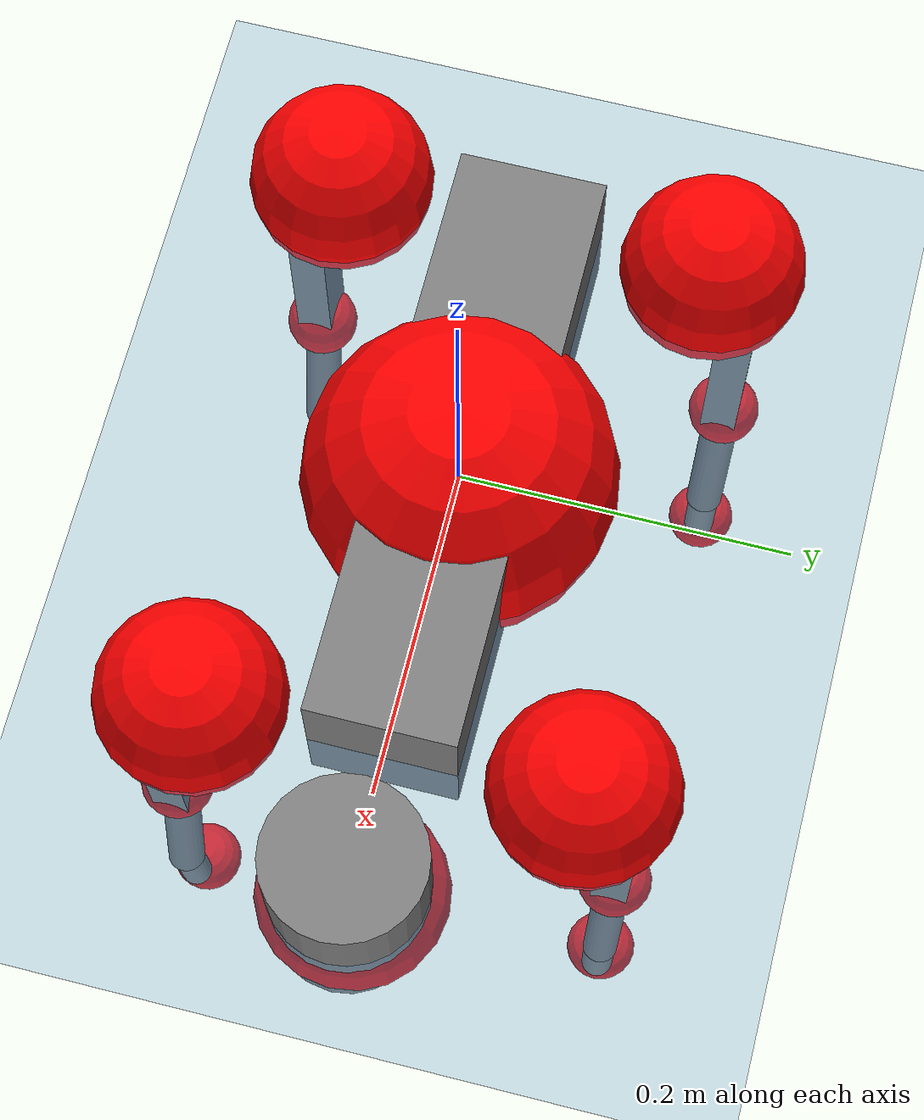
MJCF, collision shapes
<mujoco model="go2">
  <compiler angle="radian" assetdir="assets" balanceinertia="true" inertiafromgeom="false"/>

  <option timestep="0.005" density="1.2" viscosity="2e-05"/>

  <size nkey="1"/>

  <visual>
    <quality shadowsize="8192"/>
    <map shadowclip="0.5"/>
  </visual>

  <default>
    <default class="/">
      <geom contype="0" conaffinity="0" group="1" solref="-1000 -80"/>
      <site size="0.01 0.005 0.005" group="5"/>
      <general forcelimited="true" biastype="affine" gainprm="20" biasprm="0 -20 -0.5"/>
      <default class="go2">
        <joint armature="0.01" damping="0.01" frictionloss="0.2"/>
        <geom condim="1" margin="0.001"/>
        <default class="visual">
          <geom type="mesh" group="2"/>
        </default>
        <default class="collision">
          <geom group="3"/>
          <default class="foot">
            <geom size="0.022 0 0" condim="6" priority="1" friction="0.8 0.02 0.01" solimp="0.015 1 0.022"/>
          </default>
        </default>
        <default class="reward_collision_sphere">
          <geom group="5" rgba="1 0 0 1"/>
        </default>
      </default>
    </default>
  </default>

  <asset>
    <texture type="skybox" colorspace="auto" name="//unnamed_texture_0" builtin="gradient" rgb1="0.95 0.95 0.95" rgb2="0.95 0.95 0.95" width="100" height="600"/>
    <texture type="2d" colorspace="auto" name="texplane" builtin="checker" rgb1="0.345 0.575 0.748" rgb2="0.345 0.575 0.748" markrgb="1 1 1" width="512" height="512"/>
    <material name="MatPlane" class="/" texture="texplane" texuniform="true" texrepeat="2 2" specular="0.9"/>
    <material name="metal" class="/" rgba="0.9 0.95 0.95 1"/>
    <material name="black" class="/" rgba="0 0 0 1"/>
    <material name="white" class="/"/>
    <material name="gray" class="/" rgba="0.671705 0.692426 0.77427 1"/>
    <mesh name="base_0" class="/" file="base_0.obj"/>
    <mesh name="base_1" class="/" file="base_1.obj"/>
    <mesh name="base_2" class="/" file="base_2.obj"/>
    <mesh name="base_3" class="/" file="base_3.obj"/>
    <mesh name="base_4" class="/" file="base_4.obj"/>
    <mesh name="hip_0" class="/" file="hip_0.obj"/>
    <mesh name="hip_1" class="/" file="hip_1.obj"/>
    <mesh name="thigh_0" class="/" file="thigh_0.obj"/>
    <mesh name="thigh_1" class="/" file="thigh_1.obj"/>
    <mesh name="thigh_mirror_0" class="/" file="thigh_mirror_0.obj"/>
    <mesh name="thigh_mirror_1" class="/" file="thigh_mirror_1.obj"/>
    <mesh name="calf_0" class="/" file="calf_0.obj"/>
    <mesh name="calf_1" class="/" file="calf_1.obj"/>
    <mesh name="calf_mirror_0" class="/" file="calf_mirror_0.obj"/>
    <mesh name="calf_mirror_1" class="/" file="calf_mirror_1.obj"/>
    <mesh name="foot" class="/" file="foot.obj"/>
  </asset>

  <worldbody>
    <geom name="floor" class="/" size="100 100 0.125" type="plane" group="0" material="MatPlane"/>
    <light name="toplight_shadow" class="/" pos="0 0 5" dir="0.0990148 0.0990148 -0.990148" type="directional" ambient="0.04 0.04 0.04" diffuse="0.55 0.55 0.55" specular="0.12 0.12 0.12"/>
    <light name="toplight_fill" class="/" pos="0 0 5" dir="0.0990148 0.0990148 -0.990148" type="directional" castshadow="false" ambient="0.04 0.04 0.04" diffuse="0.3 0.3 0.3" specular="0.08 0.08 0.08"/>
    <body name="trunk" childclass="go2" pos="-0.00125839 0.000354656 0.0021069" quat="0.999999 0.000636093 -0.000516416 -0.00102302">
      <inertial pos="0.018744 -0.00194418 -0.00770557" quat="0.0019339 0.71561 -0.000833518 0.698497" mass="5.92495" diaginertia="0.0589174 0.103089 0.0188492"/>
      <joint name="//unnamed_joint_0" type="free" armature="0" damping="0" frictionloss="0"/>
      <geom name="//unnamed_geom_1" class="visual" material="black" mesh="base_0"/>
      <geom name="//unnamed_geom_2" class="visual" material="black" mesh="base_1"/>
      <geom name="//unnamed_geom_3" class="visual" material="black" mesh="base_2"/>
      <geom name="//unnamed_geom_4" class="visual" material="white" mesh="base_3"/>
      <geom name="//unnamed_geom_5" class="visual" material="gray" mesh="base_4"/>
      <geom name="trunk_1" class="collision" size="0.178771 0.0444313 0.0541729" type="box"/>
      <geom name="trunk_2" class="collision" size="0.0475201 0.0427681" pos="0.253259 0 0.0095075" type="cylinder"/>
      <geom name="trunk_3" class="collision" size="0.0446689" pos="0.260368 0 -0.057045"/>
      <geom name="//unnamed_geom_9" class="reward_collision_sphere" size="0.0950402"/>
      <geom name="//unnamed_geom_10" class="reward_collision_sphere" size="0.0570241" pos="0.248815 0 -0.0427837"/>
      <site name="imu" pos="-0.0171329 0.000176972 0.0344841" size="0.00950402"/>
      <camera name="track" pos="0 -2.02366 0" quat="0.707107 0.707107 0 0" mode="trackcom"/>
      <camera name="ego_camera" pos="0.277251 0 0.0427837" quat="-0.5 -0.5 0.5 0.5"/>
      <body name="FL_hip" pos="0.168979 0.0448241 -0.00246184" quat="1 1.50115e-05 9.58379e-05 4.90192e-05">
        <inertial pos="-0.00478124 -0.000332534 0.000837625" quat="0.497657 0.498645 0.505868 0.497784" mass="0.603265" diaginertia="0.000489996 0.000616099 0.000373958"/>
        <joint name="FL_hip_joint" pos="0 0 0" axis="0.999854 -0.0159423 -0.00611674" range="-1.05002 1.09786" armature="0.0090759" damping="0.021509" frictionloss="0.164283"/>
        <geom name="//unnamed_geom_11" class="visual" material="metal" mesh="hip_0"/>
        <geom name="//unnamed_geom_12" class="visual" material="gray" mesh="hip_1"/>
        <geom name="//unnamed_geom_13" class="collision" size="0.0437185 0.019008" pos="0 0.0809465 0" quat="0.707107 0.707107 0 0" type="cylinder"/>
        <geom name="//unnamed_geom_14" class="reward_collision_sphere" size="0.0570241" pos="0 0.0708282 0"/>
        <body name="FL_thigh" pos="-0.00343748 0.0969687 0.002772" quat="1 -3.93564e-05 -0.000583514 0.000309508">
          <inertial pos="-0.00452122 -0.0222523 -0.0282554" quat="0.833985 0.0773929 -0.0253084 0.545747" mass="0.967488" diaginertia="0.00334371 0.00624155 0.00070546"/>
          <joint name="FL_thigh_joint" pos="0 0 0" axis="0.00693828 0.999959 0.00573843" stiffness="0.00665937" range="-1.53674 3.54544" armature="0.00888642" damping="0.0167495" frictionloss="0.163229"/>
          <geom name="//unnamed_geom_15" class="visual" material="metal" mesh="thigh_0"/>
          <geom name="//unnamed_geom_16" class="visual" material="gray" mesh="thigh_1"/>
          <geom name="//unnamed_geom_17" class="collision" size="0.101218 0.0116424 0.0161568" pos="0 0 -0.101255" quat="0.707107 0 0.707107 0" type="box"/>
          <body name="FL_calf" pos="-0.000189993 0.00115872 -0.203409" quat="1 0.000172309 0.000240928 -0.000144119">
            <inertial pos="0.00547534 0.000197766 -0.136865" quat="0.710616 0.00315106 -0.00458133 0.703558" mass="0.207806" diaginertia="0.000802989 0.00153233 4.15137e-05"/>
            <joint name="FL_calf_joint" pos="0 0 0" axis="-0.00761283 0.999911 -0.0109465" range="-2.66784 -0.839974" armature="0.0103856" damping="0" frictionloss="0.189249"/>
            <geom name="//unnamed_geom_18" class="visual" material="gray" mesh="calf_0"/>
            <geom name="//unnamed_geom_19" class="visual" material="black" mesh="calf_1"/>
            <geom name="FL_calf0" class="collision" size="0.0114048 0.0570241" pos="0.00710901 0 -0.057045" quat="0.994493 0 -0.104807 0" type="cylinder"/>
            <geom name="//unnamed_geom_21" class="collision" size="0.0104544 0.0308881" pos="0.0177725 0 -0.140711" quat="0.999688 0 0.0249974 0" type="cylinder"/>
            <geom name="//unnamed_geom_22" class="visual" pos="0 0 -0.20251" quat="1 0 0 0" material="black" mesh="foot"/>
            <geom name="FL_foot" class="foot" size="0.0160267" pos="-0.00177725 0 -0.20251"/>
            <geom name="//unnamed_geom_24" class="reward_collision_sphere" size="0.0237601"/>
            <geom name="//unnamed_geom_25" class="reward_collision_sphere" size="0.0237601" pos="-0.00177725 0 -0.20251"/>
            <site name="FL_foot" class="foot" pos="-0.00177725 0 -0.20251" size="0.00950402"/>
          </body>
        </body>
      </body>
      <body name="FR_hip" pos="0.171047 -0.044565 -0.00159648" quat="1 -5.89125e-05 0.000199111 -0.000118893">
        <inertial pos="-0.00744206 -0.00150527 -0.00314321" quat="0.49858 0.506184 0.499939 0.495235" mass="0.589549" diaginertia="0.000476364 0.000641996 0.000361628"/>
        <joint name="FR_hip_joint" pos="0 0 0" axis="0.999948 -0.00673791 0.00761361" stiffness="0.00891393" range="-1.04687 1.03853" armature="0.00967116" damping="0" frictionloss="0.211583"/>
        <geom name="//unnamed_geom_26" class="visual" pos="0 5.32113e-10 2.28234e-08" quat="4.63268e-05 1 0 0" material="metal" mesh="hip_0"/>
        <geom name="//unnamed_geom_27" class="visual" pos="0 8.62619e-10 -5.64511e-08" quat="4.63268e-05 1 0 0" material="gray" mesh="hip_1"/>
        <geom name="//unnamed_geom_28" class="collision" size="0.0437185 0.019008" pos="0 -0.0809465 0" quat="0.707107 0.707107 0 0" type="cylinder"/>
        <geom name="//unnamed_geom_29" class="reward_collision_sphere" size="0.0570241" pos="0 -0.0708282 0"/>
        <body name="FR_thigh" pos="0.00298569 -0.0992987 -0.0010198" quat="1 0.000703426 -0.000476962 3.89246e-05">
          <inertial pos="-0.00250492 0.0209172 -0.0338541" quat="0.543373 -0.0295394 0.0813408 0.835019" mass="1.01264" diaginertia="0.00316716 0.00601111 0.000688701"/>
          <joint name="FR_thigh_joint" pos="0 0 0" axis="0.00533172 -0.999985 -0.00135485" range="-3.44972 1.55588" armature="0.00831366" damping="0.0199371" frictionloss="0.214212"/>
          <geom name="//unnamed_geom_30" class="visual" material="metal" mesh="thigh_mirror_0"/>
          <geom name="//unnamed_geom_31" class="visual" material="gray" mesh="thigh_mirror_1"/>
          <geom name="//unnamed_geom_32" class="collision" size="0.101218 0.0116424 0.0161568" pos="0 0 -0.101255" quat="0.707107 0 0.707107 0" type="box"/>
          <body name="FR_calf" pos="-0.00298875 -0.00138385 -0.203266" quat="0.999999 -0.000345846 0.000320063 0.00134335">
            <inertial pos="0.00314128 0.000700957 -0.134849" quat="0.704983 -0.00465135 0.00319271 0.709201" mass="0.220697" diaginertia="0.00087579 0.00154399 4.27354e-05"/>
            <joint name="FR_calf_joint" pos="0 0 0" axis="0.000792105 -0.999973 -0.00729903" range="0.818462 2.66347" armature="0.0106742" damping="0.0124348" frictionloss="0.215224"/>
            <geom name="//unnamed_geom_33" class="visual" material="gray" mesh="calf_mirror_0"/>
            <geom name="//unnamed_geom_34" class="visual" material="black" mesh="calf_mirror_1"/>
            <geom name="FR_calf0" class="collision" size="0.0123552 0.0570241" pos="0.00888626 0 -0.057045" quat="0.995004 0 -0.0998334 0" type="cylinder"/>
            <geom name="//unnamed_geom_36" class="collision" size="0.0104544 0.0308881" pos="0.0177725 0 -0.140711" quat="0.999688 0 0.0249974 0" type="cylinder"/>
            <geom name="//unnamed_geom_37" class="visual" pos="0 0 -0.20251" quat="1 0 0 0" material="black" mesh="foot"/>
            <geom name="FR_foot" class="foot" size="0.0203564" pos="-0.00177725 0 -0.20251"/>
            <geom name="//unnamed_geom_39" class="reward_collision_sphere" size="0.0237601"/>
            <geom name="//unnamed_geom_40" class="reward_collision_sphere" size="0.0237601" pos="-0.00177725 0 -0.20251"/>
            <site name="FR_foot" class="foot" pos="-0.00177725 0 -0.20251" size="0.00950402"/>
          </body>
        </body>
      </body>
      <body name="RL_hip" pos="-0.170157 0.0445932 -0.00144656" quat="1 0.000188796 0.000238052 -0.000516362">
        <inertial pos="0.00487782 0.00498435 0.000647885" quat="0.496971 0.502666 0.495534 0.50477" mass="0.588457" diaginertia="0.000493249 0.000632812 0.000363743"/>
        <joint name="RL_hip_joint" pos="0 0 0" axis="-1 0.000280282 -0.000944834" range="-1.04836 1.08413" armature="0.00997815" damping="0.00538715" frictionloss="0.190573"/>
        <geom name="//unnamed_geom_41" class="visual" pos="5.41194e-10 0 1.06086e-07" quat="4.63268e-05 0 1 0" material="metal" mesh="hip_0"/>
        <geom name="//unnamed_geom_42" class="visual" pos="8.7734e-10 0 9.40836e-08" quat="4.63268e-05 0 1 0" material="gray" mesh="hip_1"/>
        <geom name="//unnamed_geom_43" class="collision" size="0.0437185 0.019008" pos="0 0.0809465 0" quat="0.707107 0.707107 0 0" type="cylinder"/>
        <geom name="//unnamed_geom_44" class="reward_collision_sphere" size="0.0570241" pos="0 0.0708282 0"/>
        <body name="RL_thigh" pos="5.90445e-05 0.0938828 0.00176637" quat="0.999999 0.00112062 -4.40233e-05 0.000277301">
          <inertial pos="-0.00315034 -0.0201103 -0.0318404" quat="0.829463 0.0852338 -0.0204489 0.551641" mass="0.927022" diaginertia="0.00317854 0.00618913 0.000678853"/>
          <joint name="RL_thigh_joint" pos="0 0 0" axis="-0.000161917 0.999996 -0.00297951" stiffness="0.00434421" range="-0.576818 4.48391" armature="0.00973242" damping="0" frictionloss="0.190755"/>
          <geom name="//unnamed_geom_45" class="visual" material="metal" mesh="thigh_0"/>
          <geom name="//unnamed_geom_46" class="visual" material="gray" mesh="thigh_1"/>
          <geom name="//unnamed_geom_47" class="collision" size="0.101218 0.0116424 0.0161568" pos="0 0 -0.101255" quat="0.707107 0 0.707107 0" type="box"/>
          <body name="RL_calf" pos="-0.00225653 0.00142279 -0.205017" quat="1 -4.53283e-05 4.18958e-05 -0.000243614">
            <inertial pos="0.0082475 0.000975888 -0.136481" quat="0.706059 -0.00718997 0.00426228 0.708104" mass="0.207063" diaginertia="0.000795442 0.00158199 4.20709e-05"/>
            <joint name="RL_calf_joint" pos="0 0 0" axis="0.000814084 0.999999 0.000959202" stiffness="0.0117999" range="-2.68668 -0.888228" armature="0.0100325" damping="0.0127536" frictionloss="0.170681"/>
            <geom name="//unnamed_geom_48" class="visual" material="gray" mesh="calf_0"/>
            <geom name="//unnamed_geom_49" class="visual" material="black" mesh="calf_1"/>
            <geom name="RL_calf0" class="collision" size="0.0123552 0.0570241" pos="0.00888626 0 -0.057045" quat="0.995004 0 -0.0998334 0" type="cylinder"/>
            <geom name="//unnamed_geom_51" class="collision" size="0.0104544 0.0308881" pos="0.0177725 0 -0.140711" quat="0.999688 0 0.0249974 0" type="cylinder"/>
            <geom name="//unnamed_geom_52" class="visual" pos="0 0 -0.20251" quat="1 0 0 0" material="black" mesh="foot"/>
            <geom name="RL_foot" class="foot" size="0.0193258" pos="-0.00177725 0 -0.20251"/>
            <geom name="//unnamed_geom_54" class="reward_collision_sphere" size="0.0237601"/>
            <geom name="//unnamed_geom_55" class="reward_collision_sphere" size="0.0237601" pos="-0.00177725 0 -0.20251"/>
            <site name="RL_foot" class="foot" pos="-0.00177725 0 -0.20251" size="0.00950402"/>
          </body>
        </body>
      </body>
      <body name="RR_hip" pos="-0.171955 -0.0478817 0.00335151" quat="1 3.08762e-06 -9.90373e-06 5.53702e-06">
        <inertial pos="0.00198581 0.000951435 -0.00099186" quat="0.500195 0.496458 0.499063 0.504252" mass="0.59613" diaginertia="0.00049055 0.000630521 0.000372597"/>
        <joint name="RR_hip_joint" pos="0 0 0" axis="-0.999981 0.00365345 -0.00505684" range="-1.07776 1.10337" armature="0.00832561" damping="0" frictionloss="0.188222"/>
        <geom name="//unnamed_geom_56" class="visual" pos="-5.36929e-10 5.32113e-10 8.32631e-08" quat="2.14617e-09 4.63268e-05 4.63268e-05 -1" material="metal" mesh="hip_0"/>
        <geom name="//unnamed_geom_57" class="visual" pos="-8.8789e-10 8.62619e-10 1.50535e-07" quat="2.14617e-09 4.63268e-05 4.63268e-05 -1" material="gray" mesh="hip_1"/>
        <geom name="//unnamed_geom_58" class="collision" size="0.0437185 0.019008" pos="0 -0.0809465 0" quat="0.707107 0.707107 0 0" type="cylinder"/>
        <geom name="//unnamed_geom_59" class="reward_collision_sphere" size="0.0570241" pos="0 -0.0708282 0"/>
        <body name="RR_thigh" pos="0.000621276 -0.0947237 -0.000497628" quat="1 0.000675884 -0.000181972 0.00033246">
          <inertial pos="-0.00348957 0.0254548 -0.0300203" quat="0.551685 -0.0210142 0.0858428 0.829357" mass="0.925144" diaginertia="0.00308538 0.00605004 0.000662601"/>
          <joint name="RR_thigh_joint" pos="0 0 0" axis="0.00490394 -0.999973 0.00553506" range="-4.48094 0.489435" armature="0.00940354" damping="0.0240983" frictionloss="0.185383"/>
          <geom name="//unnamed_geom_60" class="visual" material="metal" mesh="thigh_mirror_0"/>
          <geom name="//unnamed_geom_61" class="visual" material="gray" mesh="thigh_mirror_1"/>
          <geom name="//unnamed_geom_62" class="collision" size="0.101218 0.0116424 0.0161568" pos="0 0 -0.101255" quat="0.707107 0 0.707107 0" type="box"/>
          <body name="RR_calf" pos="0.00250501 0.00110897 -0.204005" quat="1 -0.000444068 0.000212893 3.81652e-05">
            <inertial pos="0.00760734 -0.00189494 -0.133285" quat="0.698396 -0.0129499 0.00603061 0.715569" mass="0.206411" diaginertia="0.00080251 0.00155088 4.00231e-05"/>
            <joint name="RR_calf_joint" pos="0 0 0" axis="0.0141271 -0.999884 0.00574547" range="0.848148 2.75193" armature="0.00925701" damping="0.0129346" frictionloss="0.214702"/>
            <geom name="//unnamed_geom_63" class="visual" material="gray" mesh="calf_mirror_0"/>
            <geom name="//unnamed_geom_64" class="visual" material="black" mesh="calf_mirror_1"/>
            <geom name="RR_calf0" class="collision" size="0.0123552 0.0570241" pos="0.00888626 0 -0.057045" quat="0.995004 0 -0.0998334 0" type="cylinder"/>
            <geom name="//unnamed_geom_66" class="collision" size="0.0104544 0.0308881" pos="0.0177725 0 -0.140711" quat="0.999688 0 0.0249974 0" type="cylinder"/>
            <geom name="//unnamed_geom_67" class="visual" pos="0 0 -0.20251" quat="1 0 0 0" material="black" mesh="foot"/>
            <geom name="RR_foot" class="foot" size="0.0192054" pos="-0.00177725 0 -0.20251"/>
            <geom name="//unnamed_geom_69" class="reward_collision_sphere" size="0.0237601"/>
            <geom name="//unnamed_geom_70" class="reward_collision_sphere" size="0.0237601" pos="-0.00177725 0 -0.20251"/>
            <site name="RR_foot" class="foot" pos="-0.00177725 0 -0.20251" size="0.00950402"/>
          </body>
        </body>
      </body>
    </body>
  </worldbody>

  <contact>
    <pair class="/" geom1="floor" geom2="FL_foot" name="//unnamed_contact_0"/>
    <pair class="/" geom1="floor" geom2="FR_foot" name="//unnamed_contact_1"/>
    <pair class="/" geom1="floor" geom2="RL_foot" name="//unnamed_contact_2"/>
    <pair class="/" geom1="floor" geom2="RR_foot" name="//unnamed_contact_3"/>
  </contact>

  <actuator>
    <general name="FL_hip" class="/" joint="FL_hip_joint" forcerange="-20.5235 20.5235" gainprm="17.7606" biasprm="0 -17.7606 -0.442157"/>
    <general name="FL_thigh" class="/" joint="FL_thigh_joint" forcerange="-21.8579 21.8579" gainprm="17.7606" biasprm="0 -17.7606 -0.442157"/>
    <general name="FL_calf" class="/" joint="FL_calf_joint" forcerange="-39.6172 39.6172" gainprm="17.7606" biasprm="0 -17.7606 -0.442157"/>
    <general name="FR_hip" class="/" joint="FR_hip_joint" forcerange="-21.9829 21.9829" gainprm="17.7606" biasprm="0 -17.7606 -0.442157"/>
    <general name="FR_thigh" class="/" joint="FR_thigh_joint" forcerange="-24.7121 24.7121" gainprm="17.7606" biasprm="0 -17.7606 -0.442157"/>
    <general name="FR_calf" class="/" joint="FR_calf_joint" forcerange="-42.2298 42.2298" gainprm="17.7606" biasprm="0 -17.7606 -0.442157"/>
    <general name="RL_hip" class="/" joint="RL_hip_joint" forcerange="-22.1721 22.1721" gainprm="17.7606" biasprm="0 -17.7606 -0.442157"/>
    <general name="RL_thigh" class="/" joint="RL_thigh_joint" forcerange="-20.4217 20.4217" gainprm="17.7606" biasprm="0 -17.7606 -0.442157"/>
    <general name="RL_calf" class="/" joint="RL_calf_joint" forcerange="-46.7638 46.7638" gainprm="17.7606" biasprm="0 -17.7606 -0.442157"/>
    <general name="RR_hip" class="/" joint="RR_hip_joint" forcerange="-22.8207 22.8207" gainprm="17.7606" biasprm="0 -17.7606 -0.442157"/>
    <general name="RR_thigh" class="/" joint="RR_thigh_joint" forcerange="-24.0404 24.0404" gainprm="17.7606" biasprm="0 -17.7606 -0.442157"/>
    <general name="RR_calf" class="/" joint="RR_calf_joint" forcerange="-45.2389 45.2389" gainprm="17.7606" biasprm="0 -17.7606 -0.442157"/>
  </actuator>

  <sensor>
    <gyro site="imu" name="imu_angular_velocity"/>
    <velocimeter site="imu" name="imu_linear_velocity"/>
    <framelinvel objtype="site" objname="FL_foot" name="FL_foot_global_linear_velocity"/>
    <framelinvel objtype="site" objname="FR_foot" name="FR_foot_global_linear_velocity"/>
    <framelinvel objtype="site" objname="RL_foot" name="RL_foot_global_linear_velocity"/>
    <framelinvel objtype="site" objname="RR_foot" name="RR_foot_global_linear_velocity"/>
  </sensor>

  <keyframe>
    <key name="home" qpos="0 0 0.325 1 0 0 0 0.1 0.8 -1.5 -0.1 -0.8 1.5 -0.1 0.8 -1.5 0.1 -0.8 1.5"/>
  </keyframe>
</mujoco>
